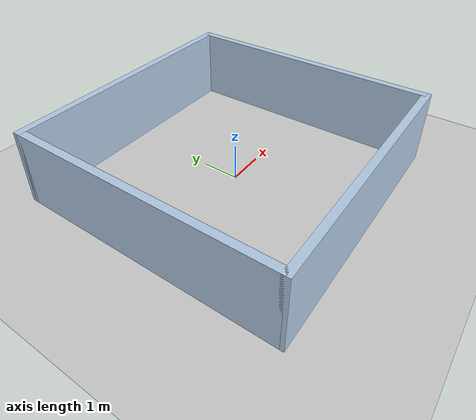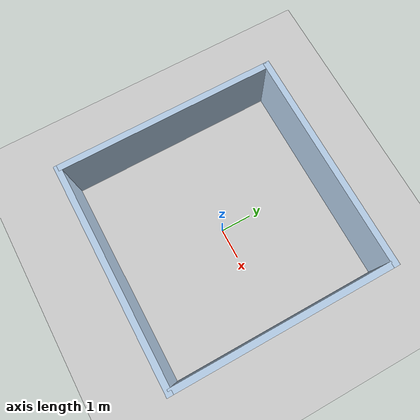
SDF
<?xml version="1.0" ?>
<sdf version="1.8">
  <world name="nuestro">
    <plugin filename="gz-sim-physics-system" name="gz::sim::systems::Physics"></plugin>
    <plugin filename="gz-sim-scene-broadcaster-system" name="gz::sim::systems::SceneBroadcaster"></plugin>
    <plugin filename="gz-sim-user-commands-system" name="gz::sim::systems::UserCommands"></plugin>
    <plugin filename="gz-sim-sensors-system" name="gz::sim::systems::Sensors"></plugin>

    <light type="directional" name="sun">
      <cast_shadows>true</cast_shadows>
      <pose>0 0 10 0 0 0</pose>
      <diffuse>0.8 0.8 0.8 1</diffuse>
      <specular>0.2 0.2 0.2 1</specular>
      <direction>-0.5 0.1 -0.9</direction>
    </light>

    <model name="ground_plane">
      <static>true</static>
      <link name="link">
        <collision name="collision">
          <geometry><plane><normal>0 0 1</normal><size>10 10</size></plane></geometry>
        </collision>
        <visual name="visual">
          <geometry><plane><normal>0 0 1</normal><size>10 10</size></plane></geometry>
          <material><ambient>0.8 0.8 0.8 1</ambient><diffuse>0.8 0.8 0.8 1</diffuse></material>
        </visual>
      </link>
    </model>

    <model name="wall_north">
      <static>true</static>
      <pose>0 3.5 1 0 0 0</pose>
      <link name="link">
        <collision name="collision"><geometry><box><size>7.2 0.2 2</size></box></geometry></collision>
        <visual name="visual">
          <geometry><box><size>7.2 0.2 2</size></box></geometry>
          <material><ambient>0.7 0.8 0.9 1</ambient></material> </visual>
      </link>
    </model>

    <model name="wall_south">
      <static>true</static>
      <pose>0 -3.5 1 0 0 0</pose>
      <link name="link">
        <collision name="collision"><geometry><box><size>7.2 0.2 2</size></box></geometry></collision>
        <visual name="visual"><geometry><box><size>7.2 0.2 2</size></box></geometry>
          <material><ambient>0.7 0.8 0.9 1</ambient></material>
        </visual>
      </link>
    </model>

    <model name="wall_east">
      <static>true</static>
      <pose>3.5 0 1 0 0 0</pose>
      <link name="link">
        <collision name="collision"><geometry><box><size>0.2 7 2</size></box></geometry></collision>
        <visual name="visual"><geometry><box><size>0.2 7 2</size></box></geometry>
          <material><ambient>0.7 0.8 0.9 1</ambient></material>
        </visual>
      </link>
    </model>

    <model name="wall_west">
      <static>true</static>
      <pose>-3.5 0 1 0 0 0</pose>
      <link name="link">
        <collision name="collision"><geometry><box><size>0.2 7 2</size></box></geometry></collision>
        <visual name="visual"><geometry><box><size>0.2 7 2</size></box></geometry>
          <material><ambient>0.7 0.8 0.9 1</ambient></material>
        </visual>
      </link>
    </model>

  </world>
</sdf>
